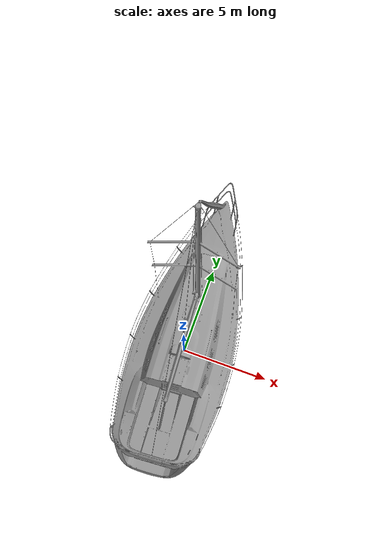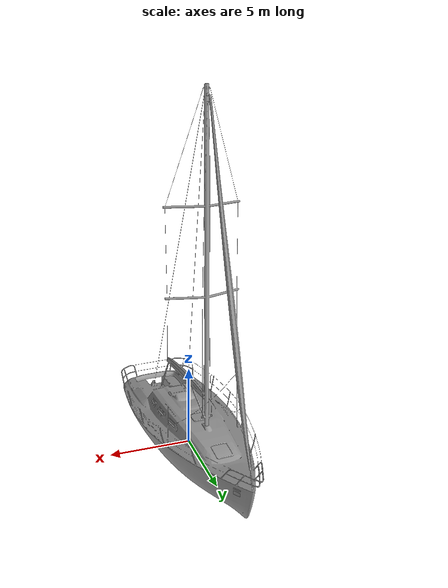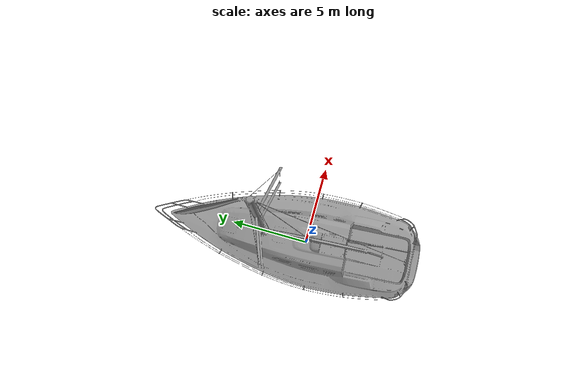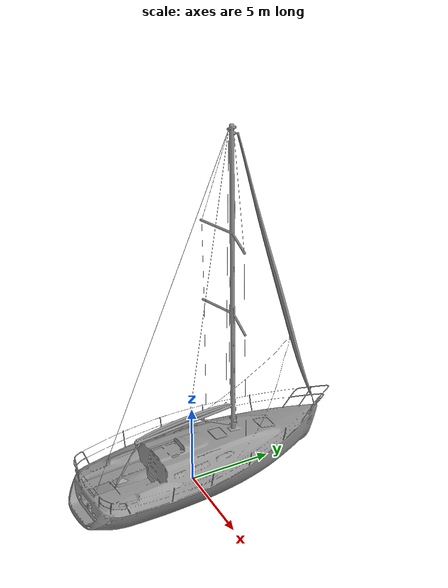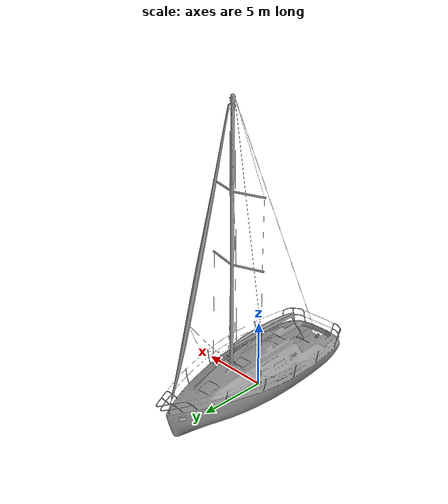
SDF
<?xml version='1.0'?>
<sdf version='1.7'>
  <model name='sailboat_1'>
    <static>true</static>
    <link name='link'>
      <visual name='visual'>
        <pose>0 0 1.0 0 0 -1.507</pose>
        <geometry>
          <mesh>
            <uri>/marinero_simulations/models/sailboat_1/meshes/Sailboat.stl</uri>
            <scale>1.8 1.8 1.8</scale>
          </mesh>
        </geometry>
        <material>
          <script>
            <uri>file://media/materials/scripts/gazebo.material</uri>
            <name>Gazebo/Grey</name>
          </script>
        </material>
      </visual>
      <collision name='collision'>
        <pose>0 0 1.0 0 0 -1.507</pose>
        <geometry>
          <mesh>
            <uri>/marinero_simulations/models/sailboat_1/meshes/Sailboat.stl</uri>
            <scale>1.8 1.8 1.8</scale>
          </mesh>
        </geometry>
      </collision>
    </link>
  </model>
</sdf>
